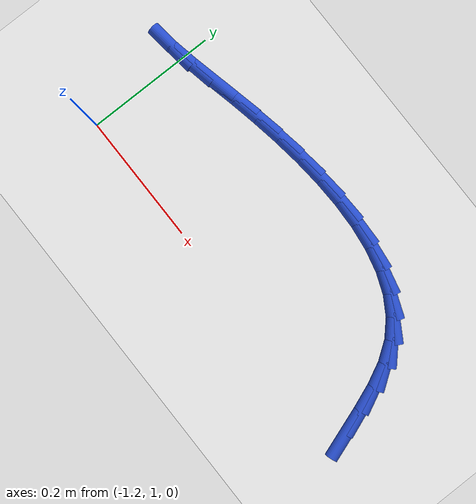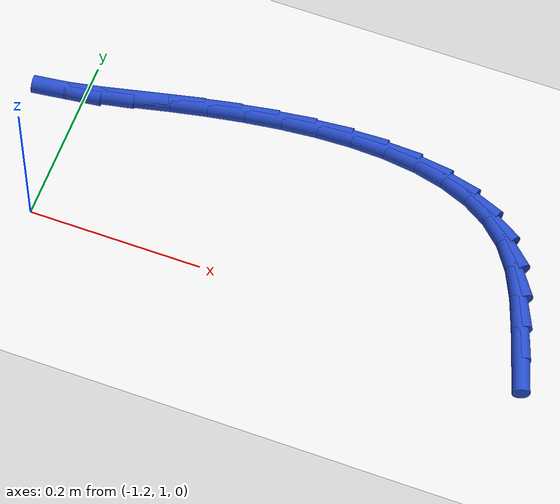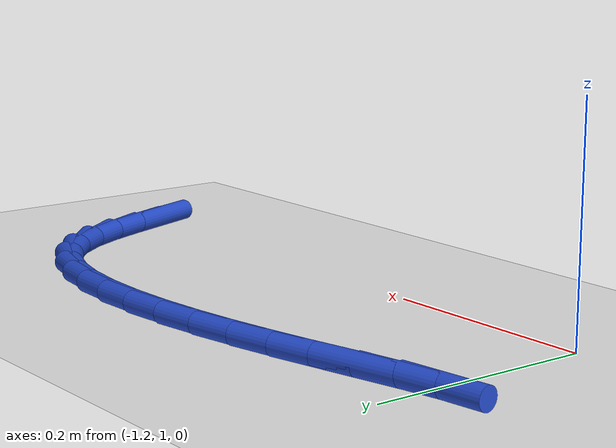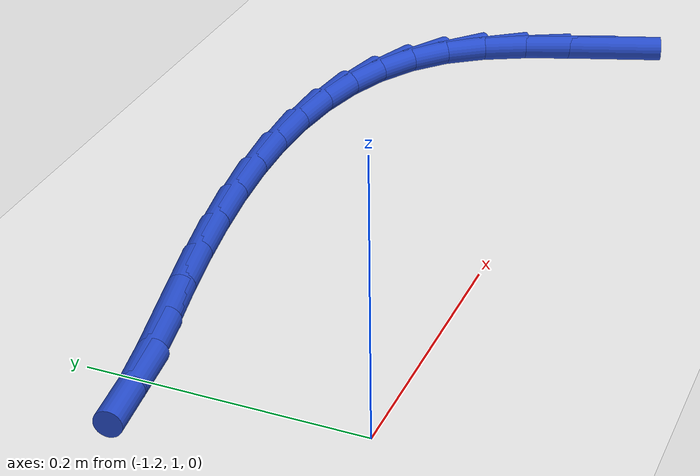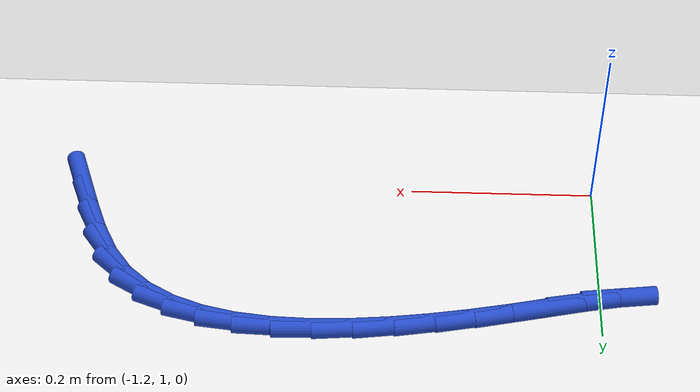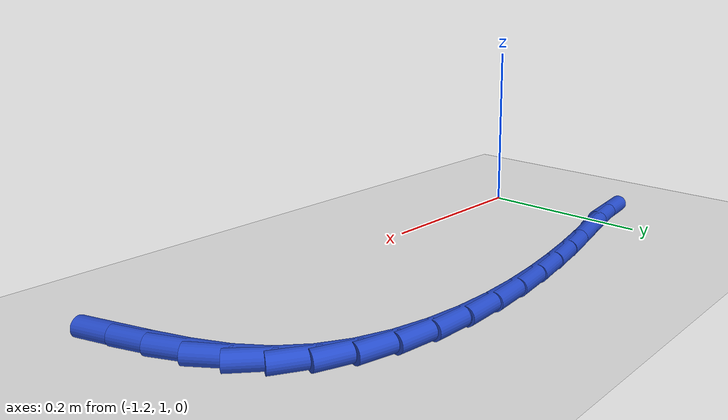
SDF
<sdf version="1.6">
 <world name="default">
  <model name="ground_plane">
   <static>1</static>
   <link name="link">
    <collision name="collision">
     <geometry><plane><normal>0 0 1</normal><size>100 100</size></plane></geometry>
     <surface><friction><ode><mu>100</mu><mu2>50</mu2></ode></friction></surface>
    </collision>
    <visual name="visual">
     <cast_shadows>0</cast_shadows>
     <geometry><plane><normal>0 0 1</normal><size>100 100</size></plane></geometry>
     <material>
      <script><uri>file://media/materials/scripts/gazebo.material</uri><name>Gazebo/WhiteGlow</name></script>
     </material>
    </visual>
   </link>
  </model>
  <model name="line">
   <link name="link_35">
    <pose>-0.6311882772888161 1.00718830761385 0.01 0 1.57 -1.2335736752910644</pose>
    <collision name="collision">
     <geometry><cylinder><radius>0.01</radius><length>0.08</length></cylinder></geometry>
    </collision>
    <visual name="visual">
     <material>
      <script><name>Gazebo/Blue</name><uri>file://media/materials/scripts/gazebo.material</uri></script>
     </material>
     <geometry><cylinder><radius>0.01</radius><length>0.08</length></cylinder></geometry>
    </visual>
   </link>
   <link name="link_36">
    <pose>-0.6440972533326463 1.0440063954066927 0.01 0 1.57 -1.2001740743552414</pose>
    <collision name="collision">
     <geometry><cylinder><radius>0.01</radius><length>0.08</length></cylinder></geometry>
    </collision>
    <visual name="visual">
     <material>
      <script><name>Gazebo/Blue</name><uri>file://media/materials/scripts/gazebo.material</uri></script>
     </material>
     <geometry><cylinder><radius>0.01</radius><length>0.08</length></cylinder></geometry>
    </visual>
   </link>
   <link name="link_37">
    <pose>-0.6579052959293871 1.0795410887004064 0.01 0 1.57 -1.1096310227361361</pose>
    <collision name="collision">
     <geometry><cylinder><radius>0.01</radius><length>0.08</length></cylinder></geometry>
    </collision>
    <visual name="visual">
     <material>
      <script><name>Gazebo/Blue</name><uri>file://media/materials/scripts/gazebo.material</uri></script>
     </material>
     <geometry><cylinder><radius>0.01</radius><length>0.08</length></cylinder></geometry>
    </visual>
   </link>
   <link name="link_38">
    <pose>-0.6741162877288543 1.1121652797209245 0.01 0 1.57 -0.9494790557066273</pose>
    <collision name="collision">
     <geometry><cylinder><radius>0.01</radius><length>0.08</length></cylinder></geometry>
    </collision>
    <visual name="visual">
     <material>
      <script><name>Gazebo/Blue</name><uri>file://media/materials/scripts/gazebo.material</uri></script>
     </material>
     <geometry><cylinder><radius>0.01</radius><length>0.08</length></cylinder></geometry>
    </visual>
   </link>
   <link name="link_39">
    <pose>-0.6942278910938241 1.140258053673404 0.01 0 1.57 -0.7386010818070715</pose>
    <collision name="collision">
     <geometry><cylinder><radius>0.01</radius><length>0.08</length></cylinder></geometry>
    </collision>
    <visual name="visual">
     <material>
      <script><name>Gazebo/Blue</name><uri>file://media/materials/scripts/gazebo.material</uri></script>
     </material>
     <geometry><cylinder><radius>0.01</radius><length>0.08</length></cylinder></geometry>
    </visual>
   </link>
   <link name="link_40">
    <pose>-0.7190625787228633 1.1628707212621319 0.01 0 1.57 -0.5400326307048426</pose>
    <collision name="collision">
     <geometry><cylinder><radius>0.01</radius><length>0.08</length></cylinder></geometry>
    </collision>
    <visual name="visual">
     <material>
      <script><name>Gazebo/Blue</name><uri>file://media/materials/scripts/gazebo.material</uri></script>
     </material>
     <geometry><cylinder><radius>0.01</radius><length>0.08</length></cylinder></geometry>
    </visual>
   </link>
   <link name="link_41">
    <pose>-0.7481712323672101 1.1803206016991812 0.01 0 1.57 -0.37067250426464926</pose>
    <collision name="collision">
     <geometry><cylinder><radius>0.01</radius><length>0.08</length></cylinder></geometry>
    </collision>
    <visual name="visual">
     <material>
      <script><name>Gazebo/Blue</name><uri>file://media/materials/scripts/gazebo.material</uri></script>
     </material>
     <geometry><cylinder><radius>0.01</radius><length>0.08</length></cylinder></geometry>
    </visual>
   </link>
   <link name="link_42">
    <pose>-0.7809640320442479 1.1930650982326867 0.01 0 1.57 -0.23247602954185473</pose>
    <collision name="collision">
     <geometry><cylinder><radius>0.01</radius><length>0.08</length></cylinder></geometry>
    </collision>
    <visual name="visual">
     <material>
      <script><name>Gazebo/Blue</name><uri>file://media/materials/scripts/gazebo.material</uri></script>
     </material>
     <geometry><cylinder><radius>0.01</radius><length>0.08</length></cylinder></geometry>
    </visual>
   </link>
   <link name="link_43">
    <pose>-0.816851157771359 1.201561614110782 0.01 0 1.57 -0.12196875474758288</pose>
    <collision name="collision">
     <geometry><cylinder><radius>0.01</radius><length>0.08</length></cylinder></geometry>
    </collision>
    <visual name="visual">
     <material>
      <script><name>Gazebo/Blue</name><uri>file://media/materials/scripts/gazebo.material</uri></script>
     </material>
     <geometry><cylinder><radius>0.01</radius><length>0.08</length></cylinder></geometry>
    </visual>
   </link>
   <link name="link_44">
    <pose>-0.8552427895659267 1.2062675525816027 0.01 0 1.57 -0.03404513152766908</pose>
    <collision name="collision">
     <geometry><cylinder><radius>0.01</radius><length>0.08</length></cylinder></geometry>
    </collision>
    <visual name="visual">
     <material>
      <script><name>Gazebo/Blue</name><uri>file://media/materials/scripts/gazebo.material</uri></script>
     </material>
     <geometry><cylinder><radius>0.01</radius><length>0.08</length></cylinder></geometry>
    </visual>
   </link>
   <link name="link_45">
    <pose>-0.895549107445334 1.207640316893283 0.01 0 1.57 0.036087229566069474</pose>
    <collision name="collision">
     <geometry><cylinder><radius>0.01</radius><length>0.08</length></cylinder></geometry>
    </collision>
    <visual name="visual">
     <material>
      <script><name>Gazebo/Blue</name><uri>file://media/materials/scripts/gazebo.material</uri></script>
     </material>
     <geometry><cylinder><radius>0.01</radius><length>0.08</length></cylinder></geometry>
    </visual>
   </link>
   <link name="link_46">
    <pose>-0.937180291426963 1.2061373102939568 0.01 0 1.57 0.09229598944925757</pose>
    <collision name="collision">
     <geometry><cylinder><radius>0.01</radius><length>0.08</length></cylinder></geometry>
    </collision>
    <visual name="visual">
     <material>
      <script><name>Gazebo/Blue</name><uri>file://media/materials/scripts/gazebo.material</uri></script>
     </material>
     <geometry><cylinder><radius>0.01</radius><length>0.08</length></cylinder></geometry>
    </visual>
   </link>
   <link name="link_47">
    <pose>-0.9795465215281973 1.2022159360317597 0.01 0 1.57 0.13749757610627572</pose>
    <collision name="collision">
     <geometry><cylinder><radius>0.01</radius><length>0.08</length></cylinder></geometry>
    </collision>
    <visual name="visual">
     <material>
      <script><name>Gazebo/Blue</name><uri>file://media/materials/scripts/gazebo.material</uri></script>
     </material>
     <geometry><cylinder><radius>0.01</radius><length>0.08</length></cylinder></geometry>
    </visual>
   </link>
   <link name="link_48">
    <pose>-1.0220579777664203 1.1963335973548257 0.01 0 1.57 0.1738037674681937</pose>
    <collision name="collision">
     <geometry><cylinder><radius>0.01</radius><length>0.08</length></cylinder></geometry>
    </collision>
    <visual name="visual">
     <material>
      <script><name>Gazebo/Blue</name><uri>file://media/materials/scripts/gazebo.material</uri></script>
     </material>
     <geometry><cylinder><radius>0.01</radius><length>0.08</length></cylinder></geometry>
    </visual>
   </link>
   <link name="link_49">
    <pose>-1.0641248401590138 1.1889476975112894 0.01 0 1.57 0.20267580263170223</pose>
    <collision name="collision">
     <geometry><cylinder><radius>0.01</radius><length>0.08</length></cylinder></geometry>
    </collision>
    <visual name="visual">
     <material>
      <script><name>Gazebo/Blue</name><uri>file://media/materials/scripts/gazebo.material</uri></script>
     </material>
     <geometry><cylinder><radius>0.01</radius><length>0.08</length></cylinder></geometry>
    </visual>
   </link>
   <link name="link_50">
    <pose>-1.1051572887233614 1.1805156397492853 0.01 0 1.57 0.22408980094221054</pose>
    <collision name="collision">
     <geometry><cylinder><radius>0.01</radius><length>0.08</length></cylinder></geometry>
    </collision>
    <visual name="visual">
     <material>
      <script><name>Gazebo/Blue</name><uri>file://media/materials/scripts/gazebo.material</uri></script>
     </material>
     <geometry><cylinder><radius>0.01</radius><length>0.08</length></cylinder></geometry>
    </visual>
   </link>
   <link name="link_51">
    <pose>-1.1446056983608281 1.171524649327541 0.01 0 1.57 0.22513276359493178</pose>
    <collision name="collision">
     <geometry><cylinder><radius>0.01</radius><length>0.08</length></cylinder></geometry>
    </collision>
    <visual name="visual">
     <material>
      <script><name>Gazebo/Blue</name><uri>file://media/materials/scripts/gazebo.material</uri></script>
     </material>
     <geometry><cylinder><radius>0.01</radius><length>0.08</length></cylinder></geometry>
    </visual>
   </link>
   <link name="link_52">
    <pose>-1.182452971487688 1.1628570525628648 0.01 0 1.57 0.19373255120533125</pose>
    <collision name="collision">
     <geometry><cylinder><radius>0.01</radius><length>0.08</length></cylinder></geometry>
    </collision>
    <visual name="visual">
     <material>
      <script><name>Gazebo/Blue</name><uri>file://media/materials/scripts/gazebo.material</uri></script>
     </material>
     <geometry><cylinder><radius>0.01</radius><length>0.08</length></cylinder></geometry>
    </visual>
   </link>
   <link name="link_53">
    <pose>-1.2190593405492742 1.1556751303087824 0.01 0 1.57 0.1260443402359267</pose>
    <collision name="collision">
     <geometry><cylinder><radius>0.01</radius><length>0.08</length></cylinder></geometry>
    </collision>
    <visual name="visual">
     <material>
      <script><name>Gazebo/Blue</name><uri>file://media/materials/scripts/gazebo.material</uri></script>
     </material>
     <geometry><cylinder><radius>0.01</radius><length>0.08</length></cylinder></geometry>
    </visual>
   </link>
  </model>
 </world>
</sdf>
